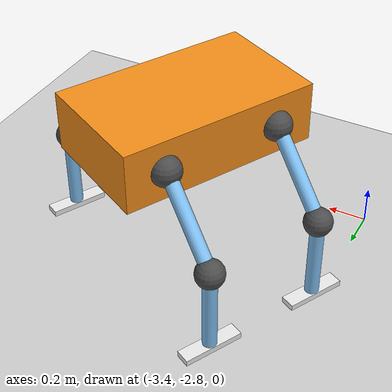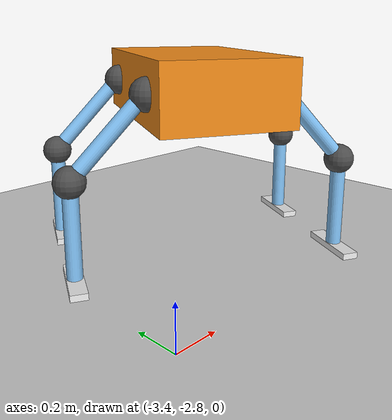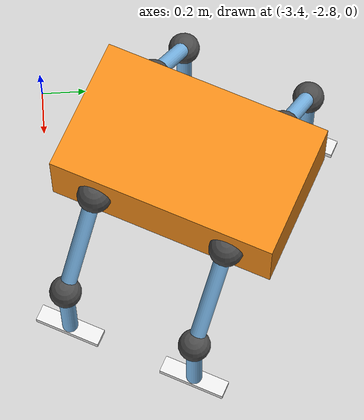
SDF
<sdf version="1.6">
 <world name="default">
  <model name="ground_plane">
   <static>1</static>
   <link name="link">
    <collision name="collision">
     <geometry><plane><normal>0 0 1</normal><size>100 100</size></plane></geometry>
     <surface>
      <contact><collide_bitmask>65535</collide_bitmask></contact>
      <friction><ode><mu>100</mu><mu2>50</mu2></ode></friction>
     </surface>
    </collision>
    <visual name="visual">
     <cast_shadows>0</cast_shadows>
     <geometry><plane><normal>0 0 1</normal><size>100 100</size></plane></geometry>
     <material>
      <script><uri>file://media/materials/scripts/gazebo.material</uri><name>Gazebo/Grey</name></script>
     </material>
    </visual>
   </link>
  </model>
  <model name="leg_joints">
   <link name="link_0">
    <pose>0 0 1.18344 0 -0 0</pose>
    <inertial>
     <mass>1</mass>
     <inertia>
      <ixx>0.166667</ixx>
      <ixy>0</ixy>
      <ixz>0</ixz>
      <iyy>0.166667</iyy>
      <iyz>0</iyz>
      <izz>0.166667</izz>
     </inertia>
    </inertial>
    <visual name="visual">
     <geometry><box><size>1 0.6 0.3</size></box></geometry>
     <material>
      <lighting>1</lighting>
      <script><uri>file://media/materials/scripts/gazebo.material</uri><name>Gazebo/Orange</name></script>
      <shader type="pixel"><normal_map>__default__</normal_map></shader>
      <ambient>1 0.5088 0.0468 1</ambient>
      <diffuse>1 0.5088 0.0468 1</diffuse>
      <specular>0.5 0.5 0.5 1</specular>
      <emissive>0 0 0 1</emissive>
     </material>
    </visual>
    <collision name="collision">
     <geometry><box><size>1 0.6 0.3</size></box></geometry>
     <surface>
      <friction>
       <ode><mu>1</mu><mu2>1</mu2><fdir1>0 0 0</fdir1><slip1>0</slip1><slip2>0</slip2></ode>
       <torsional>
        <coefficient>1</coefficient>
        <patch_radius>0</patch_radius>
        <surface_radius>0</surface_radius>
        <use_patch_radius>1</use_patch_radius>
        <ode><slip>0</slip></ode>
       </torsional>
      </friction>
      <bounce><restitution_coefficient>0</restitution_coefficient><threshold>1e+06</threshold></bounce>
      <contact>
       <collide_without_contact>0</collide_without_contact>
       <collide_without_contact_bitmask>1</collide_without_contact_bitmask>
       <collide_bitmask>1</collide_bitmask>
       <ode>
        <soft_cfm>0</soft_cfm>
        <soft_erp>0.2</soft_erp>
        <kp>1e+13</kp>
        <kd>1</kd>
        <max_vel>0.01</max_vel>
        <min_depth>0</min_depth>
       </ode>
       <bullet>
        <split_impulse>1</split_impulse>
        <split_impulse_penetration_threshold>-0.01</split_impulse_penetration_threshold>
        <soft_cfm>0</soft_cfm>
        <soft_erp>0.2</soft_erp>
        <kp>1e+13</kp>
        <kd>1</kd>
       </bullet>
      </contact>
     </surface>
    </collision>
   </link>
   <link name="link_1">
    <pose>-0.3 -0.3 1.18344 0 -0 0</pose>
    <inertial>
     <mass>1</mass>
     <inertia><ixx>0.1</ixx><ixy>0</ixy><ixz>0</ixz><iyy>0.1</iyy><iyz>0</iyz><izz>0.1</izz></inertia>
    </inertial>
    <visual name="visual">
     <geometry><sphere><radius>0.075</radius></sphere></geometry>
     <material>
      <lighting>1</lighting>
      <script><uri>file://media/materials/scripts/gazebo.material</uri><name>Gazebo/DarkGrey</name></script>
      <shader type="pixel"><normal_map>__default__</normal_map></shader>
      <ambient>0.175 0.175 0.175 1</ambient>
      <diffuse>0.175 0.175 0.175 1</diffuse>
      <specular>0.175 0.175 0.175 1</specular>
      <emissive>0 0 0 1</emissive>
     </material>
    </visual>
    <collision name="collision">
     <geometry><sphere><radius>0.075</radius></sphere></geometry>
     <surface>
      <friction>
       <ode><mu>1</mu><mu2>1</mu2><fdir1>0 0 0</fdir1><slip1>0</slip1><slip2>0</slip2></ode>
       <torsional>
        <coefficient>1</coefficient>
        <patch_radius>0</patch_radius>
        <surface_radius>0</surface_radius>
        <use_patch_radius>1</use_patch_radius>
        <ode><slip>0</slip></ode>
       </torsional>
      </friction>
      <bounce><restitution_coefficient>0</restitution_coefficient><threshold>1e+06</threshold></bounce>
      <contact>
       <collide_without_contact>0</collide_without_contact>
       <collide_without_contact_bitmask>1</collide_without_contact_bitmask>
       <collide_bitmask>1</collide_bitmask>
       <ode>
        <soft_cfm>0</soft_cfm>
        <soft_erp>0.2</soft_erp>
        <kp>1e+13</kp>
        <kd>1</kd>
        <max_vel>0.01</max_vel>
        <min_depth>0</min_depth>
       </ode>
       <bullet>
        <split_impulse>1</split_impulse>
        <split_impulse_penetration_threshold>-0.01</split_impulse_penetration_threshold>
        <soft_cfm>0</soft_cfm>
        <soft_erp>0.2</soft_erp>
        <kp>1e+13</kp>
        <kd>1</kd>
       </bullet>
      </contact>
     </surface>
    </collision>
   </link>
   <link name="link_1_clone">
    <pose>0.3 -0.3 1.18344 0 -0 0</pose>
    <inertial>
     <mass>1</mass>
     <inertia><ixx>0.1</ixx><ixy>0</ixy><ixz>0</ixz><iyy>0.1</iyy><iyz>0</iyz><izz>0.1</izz></inertia>
    </inertial>
    <visual name="visual">
     <geometry><sphere><radius>0.075</radius></sphere></geometry>
     <material>
      <lighting>1</lighting>
      <script><uri>file://media/materials/scripts/gazebo.material</uri><name>Gazebo/DarkGrey</name></script>
      <shader type="pixel"><normal_map>__default__</normal_map></shader>
      <ambient>0.175 0.175 0.175 1</ambient>
      <diffuse>0.175 0.175 0.175 1</diffuse>
      <specular>0.175 0.175 0.175 1</specular>
      <emissive>0 0 0 1</emissive>
     </material>
    </visual>
    <collision name="collision">
     <geometry><sphere><radius>0.075</radius></sphere></geometry>
     <surface>
      <friction>
       <ode><mu>1</mu><mu2>1</mu2><fdir1>0 0 0</fdir1><slip1>0</slip1><slip2>0</slip2></ode>
       <torsional>
        <coefficient>1</coefficient>
        <patch_radius>0</patch_radius>
        <surface_radius>0</surface_radius>
        <use_patch_radius>1</use_patch_radius>
        <ode><slip>0</slip></ode>
       </torsional>
      </friction>
      <bounce><restitution_coefficient>0</restitution_coefficient><threshold>1e+06</threshold></bounce>
      <contact>
       <collide_without_contact>0</collide_without_contact>
       <collide_without_contact_bitmask>1</collide_without_contact_bitmask>
       <collide_bitmask>1</collide_bitmask>
       <ode>
        <soft_cfm>0</soft_cfm>
        <soft_erp>0.2</soft_erp>
        <kp>1e+13</kp>
        <kd>1</kd>
        <max_vel>0.01</max_vel>
        <min_depth>0</min_depth>
       </ode>
       <bullet>
        <split_impulse>1</split_impulse>
        <split_impulse_penetration_threshold>-0.01</split_impulse_penetration_threshold>
        <soft_cfm>0</soft_cfm>
        <soft_erp>0.2</soft_erp>
        <kp>1e+13</kp>
        <kd>1</kd>
       </bullet>
      </contact>
     </surface>
    </collision>
   </link>
   <link name="link_1_clone_0">
    <pose>0.3 0.3 1.18344 0 -0 0</pose>
    <inertial>
     <mass>1</mass>
     <inertia><ixx>0.1</ixx><ixy>0</ixy><ixz>0</ixz><iyy>0.1</iyy><iyz>0</iyz><izz>0.1</izz></inertia>
    </inertial>
    <visual name="visual">
     <geometry><sphere><radius>0.075</radius></sphere></geometry>
     <material>
      <lighting>1</lighting>
      <script><uri>file://media/materials/scripts/gazebo.material</uri><name>Gazebo/DarkGrey</name></script>
      <shader type="pixel"><normal_map>__default__</normal_map></shader>
      <ambient>0.175 0.175 0.175 1</ambient>
      <diffuse>0.175 0.175 0.175 1</diffuse>
      <specular>0.175 0.175 0.175 1</specular>
      <emissive>0 0 0 1</emissive>
     </material>
    </visual>
    <collision name="collision">
     <geometry><sphere><radius>0.075</radius></sphere></geometry>
     <surface>
      <friction>
       <ode><mu>1</mu><mu2>1</mu2><fdir1>0 0 0</fdir1><slip1>0</slip1><slip2>0</slip2></ode>
       <torsional>
        <coefficient>1</coefficient>
        <patch_radius>0</patch_radius>
        <surface_radius>0</surface_radius>
        <use_patch_radius>1</use_patch_radius>
        <ode><slip>0</slip></ode>
       </torsional>
      </friction>
      <bounce><restitution_coefficient>0</restitution_coefficient><threshold>1e+06</threshold></bounce>
      <contact>
       <collide_without_contact>0</collide_without_contact>
       <collide_without_contact_bitmask>1</collide_without_contact_bitmask>
       <collide_bitmask>1</collide_bitmask>
       <ode>
        <soft_cfm>0</soft_cfm>
        <soft_erp>0.2</soft_erp>
        <kp>1e+13</kp>
        <kd>1</kd>
        <max_vel>0.01</max_vel>
        <min_depth>0</min_depth>
       </ode>
       <bullet>
        <split_impulse>1</split_impulse>
        <split_impulse_penetration_threshold>-0.01</split_impulse_penetration_threshold>
        <soft_cfm>0</soft_cfm>
        <soft_erp>0.2</soft_erp>
        <kp>1e+13</kp>
        <kd>1</kd>
       </bullet>
      </contact>
     </surface>
    </collision>
   </link>
   <link name="link_1_clone_1">
    <pose>-0.3 0.3 1.18344 0 -0 0</pose>
    <inertial>
     <mass>1</mass>
     <inertia><ixx>0.1</ixx><ixy>0</ixy><ixz>0</ixz><iyy>0.1</iyy><iyz>0</iyz><izz>0.1</izz></inertia>
    </inertial>
    <visual name="visual">
     <geometry><sphere><radius>0.075</radius></sphere></geometry>
     <material>
      <lighting>1</lighting>
      <script><uri>file://media/materials/scripts/gazebo.material</uri><name>Gazebo/DarkGrey</name></script>
      <shader type="pixel"><normal_map>__default__</normal_map></shader>
      <ambient>0.175 0.175 0.175 1</ambient>
      <diffuse>0.175 0.175 0.175 1</diffuse>
      <specular>0.175 0.175 0.175 1</specular>
      <emissive>0 0 0 1</emissive>
     </material>
    </visual>
    <collision name="collision">
     <geometry><sphere><radius>0.075</radius></sphere></geometry>
     <surface>
      <friction>
       <ode><mu>1</mu><mu2>1</mu2><fdir1>0 0 0</fdir1><slip1>0</slip1><slip2>0</slip2></ode>
       <torsional>
        <coefficient>1</coefficient>
        <patch_radius>0</patch_radius>
        <surface_radius>0</surface_radius>
        <use_patch_radius>1</use_patch_radius>
        <ode><slip>0</slip></ode>
       </torsional>
      </friction>
      <bounce><restitution_coefficient>0</restitution_coefficient><threshold>1e+06</threshold></bounce>
      <contact>
       <collide_without_contact>0</collide_without_contact>
       <collide_without_contact_bitmask>1</collide_without_contact_bitmask>
       <collide_bitmask>1</collide_bitmask>
       <ode>
        <soft_cfm>0</soft_cfm>
        <soft_erp>0.2</soft_erp>
        <kp>1e+13</kp>
        <kd>1</kd>
        <max_vel>0.01</max_vel>
        <min_depth>0</min_depth>
       </ode>
       <bullet>
        <split_impulse>1</split_impulse>
        <split_impulse_penetration_threshold>-0.01</split_impulse_penetration_threshold>
        <soft_cfm>0</soft_cfm>
        <soft_erp>0.2</soft_erp>
        <kp>1e+13</kp>
        <kd>1</kd>
       </bullet>
      </contact>
     </surface>
    </collision>
   </link>
   <link name="link_2">
    <pose>-0.3 -0.47 1.01344 -0.75 -0 0</pose>
    <inertial>
     <mass>1</mass>
     <inertia><ixx>0.145833</ixx><ixy>0</ixy><ixz>0</ixz><iyy>0.145833</iyy><iyz>0</iyz><izz>0.125</izz></inertia>
    </inertial>
    <visual name="visual">
     <geometry><cylinder><radius>0.035</radius><length>0.4</length></cylinder></geometry>
     <material>
      <lighting>1</lighting>
      <script><uri>file://media/materials/scripts/gazebo.material</uri><name>Gazebo/SkyBlue</name></script>
      <shader type="pixel"><normal_map>__default__</normal_map></shader>
      <ambient>0.13 0.44 0.7 1</ambient>
      <diffuse>0 0 1 1</diffuse>
      <specular>0.1 0.1 0.1 1</specular>
      <emissive>0 0 0 1</emissive>
     </material>
    </visual>
    <collision name="collision">
     <geometry><cylinder><radius>0.035</radius><length>0.4</length></cylinder></geometry>
     <surface>
      <friction>
       <ode><mu>1</mu><mu2>1</mu2><fdir1>0 0 0</fdir1><slip1>0</slip1><slip2>0</slip2></ode>
       <torsional>
        <coefficient>1</coefficient>
        <patch_radius>0</patch_radius>
        <surface_radius>0</surface_radius>
        <use_patch_radius>1</use_patch_radius>
        <ode><slip>0</slip></ode>
       </torsional>
      </friction>
      <bounce><restitution_coefficient>0</restitution_coefficient><threshold>1e+06</threshold></bounce>
      <contact>
       <collide_without_contact>0</collide_without_contact>
       <collide_without_contact_bitmask>1</collide_without_contact_bitmask>
       <collide_bitmask>1</collide_bitmask>
       <ode>
        <soft_cfm>0</soft_cfm>
        <soft_erp>0.2</soft_erp>
        <kp>1e+13</kp>
        <kd>1</kd>
        <max_vel>0.01</max_vel>
        <min_depth>0</min_depth>
       </ode>
       <bullet>
        <split_impulse>1</split_impulse>
        <split_impulse_penetration_threshold>-0.01</split_impulse_penetration_threshold>
        <soft_cfm>0</soft_cfm>
        <soft_erp>0.2</soft_erp>
        <kp>1e+13</kp>
        <kd>1</kd>
       </bullet>
      </contact>
     </surface>
    </collision>
   </link>
   <link name="link_2_clone">
    <pose>0.3 -0.47 1.01344 -0.75 -0 0</pose>
    <inertial>
     <mass>1</mass>
     <inertia><ixx>0.145833</ixx><ixy>0</ixy><ixz>0</ixz><iyy>0.145833</iyy><iyz>0</iyz><izz>0.125</izz></inertia>
    </inertial>
    <visual name="visual">
     <geometry><cylinder><radius>0.035</radius><length>0.4</length></cylinder></geometry>
     <material>
      <lighting>1</lighting>
      <script><uri>file://media/materials/scripts/gazebo.material</uri><name>Gazebo/SkyBlue</name></script>
      <shader type="pixel"><normal_map>__default__</normal_map></shader>
      <ambient>0.13 0.44 0.7 1</ambient>
      <diffuse>0 0 1 1</diffuse>
      <specular>0.1 0.1 0.1 1</specular>
      <emissive>0 0 0 1</emissive>
     </material>
    </visual>
    <collision name="collision">
     <geometry><cylinder><radius>0.035</radius><length>0.4</length></cylinder></geometry>
     <surface>
      <friction>
       <ode><mu>1</mu><mu2>1</mu2><fdir1>0 0 0</fdir1><slip1>0</slip1><slip2>0</slip2></ode>
       <torsional>
        <coefficient>1</coefficient>
        <patch_radius>0</patch_radius>
        <surface_radius>0</surface_radius>
        <use_patch_radius>1</use_patch_radius>
        <ode><slip>0</slip></ode>
       </torsional>
      </friction>
      <bounce><restitution_coefficient>0</restitution_coefficient><threshold>1e+06</threshold></bounce>
      <contact>
       <collide_without_contact>0</collide_without_contact>
       <collide_without_contact_bitmask>1</collide_without_contact_bitmask>
       <collide_bitmask>1</collide_bitmask>
       <ode>
        <soft_cfm>0</soft_cfm>
        <soft_erp>0.2</soft_erp>
        <kp>1e+13</kp>
        <kd>1</kd>
        <max_vel>0.01</max_vel>
        <min_depth>0</min_depth>
       </ode>
       <bullet>
        <split_impulse>1</split_impulse>
        <split_impulse_penetration_threshold>-0.01</split_impulse_penetration_threshold>
        <soft_cfm>0</soft_cfm>
        <soft_erp>0.2</soft_erp>
        <kp>1e+13</kp>
        <kd>1</kd>
       </bullet>
      </contact>
     </surface>
    </collision>
   </link>
   <link name="link_2_clone_0">
    <pose>-0.3 0.47 1.01344 0.75 -0 0</pose>
    <inertial>
     <mass>1</mass>
     <inertia><ixx>0.145833</ixx><ixy>0</ixy><ixz>0</ixz><iyy>0.145833</iyy><iyz>0</iyz><izz>0.125</izz></inertia>
    </inertial>
    <visual name="visual">
     <geometry><cylinder><radius>0.035</radius><length>0.4</length></cylinder></geometry>
     <material>
      <lighting>1</lighting>
      <script><uri>file://media/materials/scripts/gazebo.material</uri><name>Gazebo/SkyBlue</name></script>
      <shader type="pixel"><normal_map>__default__</normal_map></shader>
      <ambient>0.13 0.44 0.7 1</ambient>
      <diffuse>0 0 1 1</diffuse>
      <specular>0.1 0.1 0.1 1</specular>
      <emissive>0 0 0 1</emissive>
     </material>
    </visual>
    <collision name="collision">
     <geometry><cylinder><radius>0.035</radius><length>0.4</length></cylinder></geometry>
     <surface>
      <friction>
       <ode><mu>1</mu><mu2>1</mu2><fdir1>0 0 0</fdir1><slip1>0</slip1><slip2>0</slip2></ode>
       <torsional>
        <coefficient>1</coefficient>
        <patch_radius>0</patch_radius>
        <surface_radius>0</surface_radius>
        <use_patch_radius>1</use_patch_radius>
        <ode><slip>0</slip></ode>
       </torsional>
      </friction>
      <bounce><restitution_coefficient>0</restitution_coefficient><threshold>1e+06</threshold></bounce>
      <contact>
       <collide_without_contact>0</collide_without_contact>
       <collide_without_contact_bitmask>1</collide_without_contact_bitmask>
       <collide_bitmask>1</collide_bitmask>
       <ode>
        <soft_cfm>0</soft_cfm>
        <soft_erp>0.2</soft_erp>
        <kp>1e+13</kp>
        <kd>1</kd>
        <max_vel>0.01</max_vel>
        <min_depth>0</min_depth>
       </ode>
       <bullet>
        <split_impulse>1</split_impulse>
        <split_impulse_penetration_threshold>-0.01</split_impulse_penetration_threshold>
        <soft_cfm>0</soft_cfm>
        <soft_erp>0.2</soft_erp>
        <kp>1e+13</kp>
        <kd>1</kd>
       </bullet>
      </contact>
     </surface>
    </collision>
   </link>
   <link name="link_2_clone_1">
    <pose>0.3 0.47 1.01344 0.75 -0 0</pose>
    <inertial>
     <mass>1</mass>
     <inertia><ixx>0.145833</ixx><ixy>0</ixy><ixz>0</ixz><iyy>0.145833</iyy><iyz>0</iyz><izz>0.125</izz></inertia>
    </inertial>
    <visual name="visual">
     <geometry><cylinder><radius>0.035</radius><length>0.4</length></cylinder></geometry>
     <material>
      <lighting>1</lighting>
      <script><uri>file://media/materials/scripts/gazebo.material</uri><name>Gazebo/SkyBlue</name></script>
      <shader type="pixel"><normal_map>__default__</normal_map></shader>
      <ambient>0.13 0.44 0.7 1</ambient>
      <diffuse>0 0 1 1</diffuse>
      <specular>0.1 0.1 0.1 1</specular>
      <emissive>0 0 0 1</emissive>
     </material>
    </visual>
    <collision name="collision">
     <geometry><cylinder><radius>0.035</radius><length>0.4</length></cylinder></geometry>
     <surface>
      <friction>
       <ode><mu>1</mu><mu2>1</mu2><fdir1>0 0 0</fdir1><slip1>0</slip1><slip2>0</slip2></ode>
       <torsional>
        <coefficient>1</coefficient>
        <patch_radius>0</patch_radius>
        <surface_radius>0</surface_radius>
        <use_patch_radius>1</use_patch_radius>
        <ode><slip>0</slip></ode>
       </torsional>
      </friction>
      <bounce><restitution_coefficient>0</restitution_coefficient><threshold>1e+06</threshold></bounce>
      <contact>
       <collide_without_contact>0</collide_without_contact>
       <collide_without_contact_bitmask>1</collide_without_contact_bitmask>
       <collide_bitmask>1</collide_bitmask>
       <ode>
        <soft_cfm>0</soft_cfm>
        <soft_erp>0.2</soft_erp>
        <kp>1e+13</kp>
        <kd>1</kd>
        <max_vel>0.01</max_vel>
        <min_depth>0</min_depth>
       </ode>
       <bullet>
        <split_impulse>1</split_impulse>
        <split_impulse_penetration_threshold>-0.01</split_impulse_penetration_threshold>
        <soft_cfm>0</soft_cfm>
        <soft_erp>0.2</soft_erp>
        <kp>1e+13</kp>
        <kd>1</kd>
       </bullet>
      </contact>
     </surface>
    </collision>
   </link>
   <link name="link_3">
    <pose>-0.3 -0.63 0.837888 0 -0 0</pose>
    <inertial>
     <mass>1</mass>
     <inertia><ixx>0.1</ixx><ixy>0</ixy><ixz>0</ixz><iyy>0.1</iyy><iyz>0</iyz><izz>0.1</izz></inertia>
    </inertial>
    <visual name="visual">
     <geometry><sphere><radius>0.07</radius></sphere></geometry>
     <material>
      <lighting>1</lighting>
      <script><uri>file://media/materials/scripts/gazebo.material</uri><name>Gazebo/DarkGrey</name></script>
      <shader type="pixel"><normal_map>__default__</normal_map></shader>
      <ambient>0.175 0.175 0.175 1</ambient>
      <diffuse>0.175 0.175 0.175 1</diffuse>
      <specular>0.175 0.175 0.175 1</specular>
      <emissive>0 0 0 1</emissive>
     </material>
    </visual>
    <collision name="collision">
     <geometry><sphere><radius>0.07</radius></sphere></geometry>
     <surface>
      <friction>
       <ode><mu>1</mu><mu2>1</mu2><fdir1>0 0 0</fdir1><slip1>0</slip1><slip2>0</slip2></ode>
       <torsional>
        <coefficient>1</coefficient>
        <patch_radius>0</patch_radius>
        <surface_radius>0</surface_radius>
        <use_patch_radius>1</use_patch_radius>
        <ode><slip>0</slip></ode>
       </torsional>
      </friction>
      <bounce><restitution_coefficient>0</restitution_coefficient><threshold>1e+06</threshold></bounce>
      <contact>
       <collide_without_contact>0</collide_without_contact>
       <collide_without_contact_bitmask>1</collide_without_contact_bitmask>
       <collide_bitmask>1</collide_bitmask>
       <ode>
        <soft_cfm>0</soft_cfm>
        <soft_erp>0.2</soft_erp>
        <kp>1e+13</kp>
        <kd>1</kd>
        <max_vel>0.01</max_vel>
        <min_depth>0</min_depth>
       </ode>
       <bullet>
        <split_impulse>1</split_impulse>
        <split_impulse_penetration_threshold>-0.01</split_impulse_penetration_threshold>
        <soft_cfm>0</soft_cfm>
        <soft_erp>0.2</soft_erp>
        <kp>1e+13</kp>
        <kd>1</kd>
       </bullet>
      </contact>
     </surface>
    </collision>
   </link>
   <link name="link_3_clone">
    <pose>0.3 -0.63 0.837888 0 -0 0</pose>
    <inertial>
     <mass>1</mass>
     <inertia><ixx>0.1</ixx><ixy>0</ixy><ixz>0</ixz><iyy>0.1</iyy><iyz>0</iyz><izz>0.1</izz></inertia>
    </inertial>
    <visual name="visual">
     <geometry><sphere><radius>0.07</radius></sphere></geometry>
     <material>
      <lighting>1</lighting>
      <script><uri>file://media/materials/scripts/gazebo.material</uri><name>Gazebo/DarkGrey</name></script>
      <shader type="pixel"><normal_map>__default__</normal_map></shader>
      <ambient>0.175 0.175 0.175 1</ambient>
      <diffuse>0.175 0.175 0.175 1</diffuse>
      <specular>0.175 0.175 0.175 1</specular>
      <emissive>0 0 0 1</emissive>
     </material>
    </visual>
    <collision name="collision">
     <geometry><sphere><radius>0.07</radius></sphere></geometry>
     <surface>
      <friction>
       <ode><mu>1</mu><mu2>1</mu2><fdir1>0 0 0</fdir1><slip1>0</slip1><slip2>0</slip2></ode>
       <torsional>
        <coefficient>1</coefficient>
        <patch_radius>0</patch_radius>
        <surface_radius>0</surface_radius>
        <use_patch_radius>1</use_patch_radius>
        <ode><slip>0</slip></ode>
       </torsional>
      </friction>
      <bounce><restitution_coefficient>0</restitution_coefficient><threshold>1e+06</threshold></bounce>
      <contact>
       <collide_without_contact>0</collide_without_contact>
       <collide_without_contact_bitmask>1</collide_without_contact_bitmask>
       <collide_bitmask>1</collide_bitmask>
       <ode>
        <soft_cfm>0</soft_cfm>
        <soft_erp>0.2</soft_erp>
        <kp>1e+13</kp>
        <kd>1</kd>
        <max_vel>0.01</max_vel>
        <min_depth>0</min_depth>
       </ode>
       <bullet>
        <split_impulse>1</split_impulse>
        <split_impulse_penetration_threshold>-0.01</split_impulse_penetration_threshold>
        <soft_cfm>0</soft_cfm>
        <soft_erp>0.2</soft_erp>
        <kp>1e+13</kp>
        <kd>1</kd>
       </bullet>
      </contact>
     </surface>
    </collision>
   </link>
   <link name="link_3_clone_0">
    <pose>-0.3 0.63 0.837888 0 -0 0</pose>
    <inertial>
     <mass>1</mass>
     <inertia><ixx>0.1</ixx><ixy>0</ixy><ixz>0</ixz><iyy>0.1</iyy><iyz>0</iyz><izz>0.1</izz></inertia>
    </inertial>
    <visual name="visual">
     <geometry><sphere><radius>0.07</radius></sphere></geometry>
     <material>
      <lighting>1</lighting>
      <script><uri>file://media/materials/scripts/gazebo.material</uri><name>Gazebo/DarkGrey</name></script>
      <shader type="pixel"><normal_map>__default__</normal_map></shader>
      <ambient>0.175 0.175 0.175 1</ambient>
      <diffuse>0.175 0.175 0.175 1</diffuse>
      <specular>0.175 0.175 0.175 1</specular>
      <emissive>0 0 0 1</emissive>
     </material>
    </visual>
    <collision name="collision">
     <geometry><sphere><radius>0.07</radius></sphere></geometry>
     <surface>
      <friction>
       <ode><mu>1</mu><mu2>1</mu2><fdir1>0 0 0</fdir1><slip1>0</slip1><slip2>0</slip2></ode>
       <torsional>
        <coefficient>1</coefficient>
        <patch_radius>0</patch_radius>
        <surface_radius>0</surface_radius>
        <use_patch_radius>1</use_patch_radius>
        <ode><slip>0</slip></ode>
       </torsional>
      </friction>
      <bounce><restitution_coefficient>0</restitution_coefficient><threshold>1e+06</threshold></bounce>
      <contact>
       <collide_without_contact>0</collide_without_contact>
       <collide_without_contact_bitmask>1</collide_without_contact_bitmask>
       <collide_bitmask>1</collide_bitmask>
       <ode>
        <soft_cfm>0</soft_cfm>
        <soft_erp>0.2</soft_erp>
        <kp>1e+13</kp>
        <kd>1</kd>
        <max_vel>0.01</max_vel>
        <min_depth>0</min_depth>
       </ode>
       <bullet>
        <split_impulse>1</split_impulse>
        <split_impulse_penetration_threshold>-0.01</split_impulse_penetration_threshold>
        <soft_cfm>0</soft_cfm>
        <soft_erp>0.2</soft_erp>
        <kp>1e+13</kp>
        <kd>1</kd>
       </bullet>
      </contact>
     </surface>
    </collision>
   </link>
   <link name="link_3_clone_1">
    <pose>0.3 0.63 0.837888 0 -0 0</pose>
    <inertial>
     <mass>1</mass>
     <inertia><ixx>0.1</ixx><ixy>0</ixy><ixz>0</ixz><iyy>0.1</iyy><iyz>0</iyz><izz>0.1</izz></inertia>
    </inertial>
    <visual name="visual">
     <geometry><sphere><radius>0.07</radius></sphere></geometry>
     <material>
      <lighting>1</lighting>
      <script><uri>file://media/materials/scripts/gazebo.material</uri><name>Gazebo/DarkGrey</name></script>
      <shader type="pixel"><normal_map>__default__</normal_map></shader>
      <ambient>0.175 0.175 0.175 1</ambient>
      <diffuse>0.175 0.175 0.175 1</diffuse>
      <specular>0.175 0.175 0.175 1</specular>
      <emissive>0 0 0 1</emissive>
     </material>
    </visual>
    <collision name="collision">
     <geometry><sphere><radius>0.07</radius></sphere></geometry>
     <surface>
      <friction>
       <ode><mu>1</mu><mu2>1</mu2><fdir1>0 0 0</fdir1><slip1>0</slip1><slip2>0</slip2></ode>
       <torsional>
        <coefficient>1</coefficient>
        <patch_radius>0</patch_radius>
        <surface_radius>0</surface_radius>
        <use_patch_radius>1</use_patch_radius>
        <ode><slip>0</slip></ode>
       </torsional>
      </friction>
      <bounce><restitution_coefficient>0</restitution_coefficient><threshold>1e+06</threshold></bounce>
      <contact>
       <collide_without_contact>0</collide_without_contact>
       <collide_without_contact_bitmask>1</collide_without_contact_bitmask>
       <collide_bitmask>1</collide_bitmask>
       <ode>
        <soft_cfm>0</soft_cfm>
        <soft_erp>0.2</soft_erp>
        <kp>1e+13</kp>
        <kd>1</kd>
        <max_vel>0.01</max_vel>
        <min_depth>0</min_depth>
       </ode>
       <bullet>
        <split_impulse>1</split_impulse>
        <split_impulse_penetration_threshold>-0.01</split_impulse_penetration_threshold>
        <soft_cfm>0</soft_cfm>
        <soft_erp>0.2</soft_erp>
        <kp>1e+13</kp>
        <kd>1</kd>
       </bullet>
      </contact>
     </surface>
    </collision>
   </link>
   <link name="link_4">
    <pose>-0.3 -0.63 0.600367 0 -0 0</pose>
    <inertial>
     <mass>1</mass>
     <inertia><ixx>0.145833</ixx><ixy>0</ixy><ixz>0</ixz><iyy>0.145833</iyy><iyz>0</iyz><izz>0.125</izz></inertia>
    </inertial>
    <visual name="visual">
     <geometry><cylinder><radius>0.035</radius><length>0.4</length></cylinder></geometry>
     <material>
      <lighting>1</lighting>
      <script><uri>file://media/materials/scripts/gazebo.material</uri><name>Gazebo/SkyBlue</name></script>
      <shader type="pixel"><normal_map>__default__</normal_map></shader>
      <ambient>0.13 0.44 0.7 1</ambient>
      <diffuse>0 0 1 1</diffuse>
      <specular>0.1 0.1 0.1 1</specular>
      <emissive>0 0 0 1</emissive>
     </material>
    </visual>
    <collision name="collision">
     <geometry><cylinder><radius>0.035</radius><length>0.4</length></cylinder></geometry>
     <surface>
      <friction>
       <ode><mu>1</mu><mu2>1</mu2><fdir1>0 0 0</fdir1><slip1>0</slip1><slip2>0</slip2></ode>
       <torsional>
        <coefficient>1</coefficient>
        <patch_radius>0</patch_radius>
        <surface_radius>0</surface_radius>
        <use_patch_radius>1</use_patch_radius>
        <ode><slip>0</slip></ode>
       </torsional>
      </friction>
      <bounce><restitution_coefficient>0</restitution_coefficient><threshold>1e+06</threshold></bounce>
      <contact>
       <collide_without_contact>0</collide_without_contact>
       <collide_without_contact_bitmask>1</collide_without_contact_bitmask>
       <collide_bitmask>1</collide_bitmask>
       <ode>
        <soft_cfm>0</soft_cfm>
        <soft_erp>0.2</soft_erp>
        <kp>1e+13</kp>
        <kd>1</kd>
        <max_vel>0.01</max_vel>
        <min_depth>0</min_depth>
       </ode>
       <bullet>
        <split_impulse>1</split_impulse>
        <split_impulse_penetration_threshold>-0.01</split_impulse_penetration_threshold>
        <soft_cfm>0</soft_cfm>
        <soft_erp>0.2</soft_erp>
        <kp>1e+13</kp>
        <kd>1</kd>
       </bullet>
      </contact>
     </surface>
    </collision>
   </link>
   <link name="link_4_clone">
    <pose>0.3 -0.63 0.600367 0 -0 0</pose>
    <inertial>
     <mass>1</mass>
     <inertia><ixx>0.145833</ixx><ixy>0</ixy><ixz>0</ixz><iyy>0.145833</iyy><iyz>0</iyz><izz>0.125</izz></inertia>
    </inertial>
    <visual name="visual">
     <geometry><cylinder><radius>0.035</radius><length>0.4</length></cylinder></geometry>
     <material>
      <lighting>1</lighting>
      <script><uri>file://media/materials/scripts/gazebo.material</uri><name>Gazebo/SkyBlue</name></script>
      <shader type="pixel"><normal_map>__default__</normal_map></shader>
      <ambient>0.13 0.44 0.7 1</ambient>
      <diffuse>0 0 1 1</diffuse>
      <specular>0.1 0.1 0.1 1</specular>
      <emissive>0 0 0 1</emissive>
     </material>
    </visual>
    <collision name="collision">
     <geometry><cylinder><radius>0.035</radius><length>0.4</length></cylinder></geometry>
     <surface>
      <friction>
       <ode><mu>1</mu><mu2>1</mu2><fdir1>0 0 0</fdir1><slip1>0</slip1><slip2>0</slip2></ode>
       <torsional>
        <coefficient>1</coefficient>
        <patch_radius>0</patch_radius>
        <surface_radius>0</surface_radius>
        <use_patch_radius>1</use_patch_radius>
        <ode><slip>0</slip></ode>
       </torsional>
      </friction>
      <bounce><restitution_coefficient>0</restitution_coefficient><threshold>1e+06</threshold></bounce>
      <contact>
       <collide_without_contact>0</collide_without_contact>
       <collide_without_contact_bitmask>1</collide_without_contact_bitmask>
       <collide_bitmask>1</collide_bitmask>
       <ode>
        <soft_cfm>0</soft_cfm>
        <soft_erp>0.2</soft_erp>
        <kp>1e+13</kp>
        <kd>1</kd>
        <max_vel>0.01</max_vel>
        <min_depth>0</min_depth>
       </ode>
       <bullet>
        <split_impulse>1</split_impulse>
        <split_impulse_penetration_threshold>-0.01</split_impulse_penetration_threshold>
        <soft_cfm>0</soft_cfm>
        <soft_erp>0.2</soft_erp>
        <kp>1e+13</kp>
        <kd>1</kd>
       </bullet>
      </contact>
     </surface>
    </collision>
   </link>
   <link name="link_4_clone_0">
    <pose>-0.3 0.63 0.600367 0 -0 0</pose>
    <inertial>
     <mass>1</mass>
     <inertia><ixx>0.145833</ixx><ixy>0</ixy><ixz>0</ixz><iyy>0.145833</iyy><iyz>0</iyz><izz>0.125</izz></inertia>
    </inertial>
    <visual name="visual">
     <geometry><cylinder><radius>0.035</radius><length>0.4</length></cylinder></geometry>
     <material>
      <lighting>1</lighting>
      <script><uri>file://media/materials/scripts/gazebo.material</uri><name>Gazebo/SkyBlue</name></script>
      <shader type="pixel"><normal_map>__default__</normal_map></shader>
      <ambient>0.13 0.44 0.7 1</ambient>
      <diffuse>0 0 1 1</diffuse>
      <specular>0.1 0.1 0.1 1</specular>
      <emissive>0 0 0 1</emissive>
     </material>
    </visual>
    <collision name="collision">
     <geometry><cylinder><radius>0.035</radius><length>0.4</length></cylinder></geometry>
     <surface>
      <friction>
       <ode><mu>1</mu><mu2>1</mu2><fdir1>0 0 0</fdir1><slip1>0</slip1><slip2>0</slip2></ode>
       <torsional>
        <coefficient>1</coefficient>
        <patch_radius>0</patch_radius>
        <surface_radius>0</surface_radius>
        <use_patch_radius>1</use_patch_radius>
        <ode><slip>0</slip></ode>
       </torsional>
      </friction>
      <bounce><restitution_coefficient>0</restitution_coefficient><threshold>1e+06</threshold></bounce>
      <contact>
       <collide_without_contact>0</collide_without_contact>
       <collide_without_contact_bitmask>1</collide_without_contact_bitmask>
       <collide_bitmask>1</collide_bitmask>
       <ode>
        <soft_cfm>0</soft_cfm>
        <soft_erp>0.2</soft_erp>
        <kp>1e+13</kp>
        <kd>1</kd>
        <max_vel>0.01</max_vel>
        <min_depth>0</min_depth>
       </ode>
       <bullet>
        <split_impulse>1</split_impulse>
        <split_impulse_penetration_threshold>-0.01</split_impulse_penetration_threshold>
        <soft_cfm>0</soft_cfm>
        <soft_erp>0.2</soft_erp>
        <kp>1e+13</kp>
        <kd>1</kd>
       </bullet>
      </contact>
     </surface>
    </collision>
   </link>
   <link name="link_4_clone_1">
    <pose>0.3 0.63 0.600367 0 -0 0</pose>
    <inertial>
     <mass>1</mass>
     <inertia><ixx>0.145833</ixx><ixy>0</ixy><ixz>0</ixz><iyy>0.145833</iyy><iyz>0</iyz><izz>0.125</izz></inertia>
    </inertial>
    <visual name="visual">
     <geometry><cylinder><radius>0.035</radius><length>0.4</length></cylinder></geometry>
     <material>
      <lighting>1</lighting>
      <script><uri>file://media/materials/scripts/gazebo.material</uri><name>Gazebo/SkyBlue</name></script>
      <shader type="pixel"><normal_map>__default__</normal_map></shader>
      <ambient>0.13 0.44 0.7 1</ambient>
      <diffuse>0 0 1 1</diffuse>
      <specular>0.1 0.1 0.1 1</specular>
      <emissive>0 0 0 1</emissive>
     </material>
    </visual>
    <collision name="collision">
     <geometry><cylinder><radius>0.035</radius><length>0.4</length></cylinder></geometry>
     <surface>
      <friction>
       <ode><mu>1</mu><mu2>1</mu2><fdir1>0 0 0</fdir1><slip1>0</slip1><slip2>0</slip2></ode>
       <torsional>
        <coefficient>1</coefficient>
        <patch_radius>0</patch_radius>
        <surface_radius>0</surface_radius>
        <use_patch_radius>1</use_patch_radius>
        <ode><slip>0</slip></ode>
       </torsional>
      </friction>
      <bounce><restitution_coefficient>0</restitution_coefficient><threshold>1e+06</threshold></bounce>
      <contact>
       <collide_without_contact>0</collide_without_contact>
       <collide_without_contact_bitmask>1</collide_without_contact_bitmask>
       <collide_bitmask>1</collide_bitmask>
       <ode>
        <soft_cfm>0</soft_cfm>
        <soft_erp>0.2</soft_erp>
        <kp>1e+13</kp>
        <kd>1</kd>
        <max_vel>0.01</max_vel>
        <min_depth>0</min_depth>
       </ode>
       <bullet>
        <split_impulse>1</split_impulse>
        <split_impulse_penetration_threshold>-0.01</split_impulse_penetration_threshold>
        <soft_cfm>0</soft_cfm>
        <soft_erp>0.2</soft_erp>
        <kp>1e+13</kp>
        <kd>1</kd>
       </bullet>
      </contact>
     </surface>
    </collision>
   </link>
   <link name="link_5">
    <pose>-0.3 -0.63 0.39802 0 -0 0</pose>
    <inertial>
     <mass>0.00039103</mass>
     <inertia>
      <ixx>1.3e-07</ixx>
      <ixy>0</ixy>
      <ixz>0</ixz>
      <iyy>2.46e-06</iyy>
      <iyz>0</iyz>
      <izz>2.55e-06</izz>
     </inertia>
    </inertial>
    <visual name="visual">
     <geometry><box><size>0.3 0.075 0.03</size></box></geometry>
     <material>
      <lighting>1</lighting>
      <script><uri>file://media/materials/scripts/gazebo.material</uri><name>Gazebo/White</name></script>
      <shader type="pixel"><normal_map>__default__</normal_map></shader>
      <ambient>0.3 0.3 0.3 1</ambient>
      <diffuse>0.7 0.7 0.7 1</diffuse>
      <specular>0.01 0.01 0.01 1</specular>
      <emissive>0 0 0 1</emissive>
     </material>
    </visual>
    <collision name="collision">
     <geometry><box><size>0.3 0.075 0.03</size></box></geometry>
     <surface>
      <friction>
       <ode><mu>1</mu><mu2>1</mu2><fdir1>0 0 0</fdir1><slip1>0</slip1><slip2>0</slip2></ode>
       <torsional>
        <coefficient>1</coefficient>
        <patch_radius>0</patch_radius>
        <surface_radius>0</surface_radius>
        <use_patch_radius>1</use_patch_radius>
        <ode><slip>0</slip></ode>
       </torsional>
      </friction>
      <bounce><restitution_coefficient>0</restitution_coefficient><threshold>1e+06</threshold></bounce>
      <contact>
       <collide_without_contact>0</collide_without_contact>
       <collide_without_contact_bitmask>1</collide_without_contact_bitmask>
       <collide_bitmask>1</collide_bitmask>
       <ode>
        <soft_cfm>0</soft_cfm>
        <soft_erp>0.2</soft_erp>
        <kp>1e+13</kp>
        <kd>1</kd>
        <max_vel>0.01</max_vel>
        <min_depth>0</min_depth>
       </ode>
       <bullet>
        <split_impulse>1</split_impulse>
        <split_impulse_penetration_threshold>-0.01</split_impulse_penetration_threshold>
        <soft_cfm>0</soft_cfm>
        <soft_erp>0.2</soft_erp>
        <kp>1e+13</kp>
        <kd>1</kd>
       </bullet>
      </contact>
     </surface>
    </collision>
   </link>
   <link name="link_5_clone">
    <pose>0.3 -0.63 0.39802 0 -0 0</pose>
    <inertial>
     <mass>0.00039103</mass>
     <inertia>
      <ixx>1.3e-07</ixx>
      <ixy>0</ixy>
      <ixz>0</ixz>
      <iyy>2.46e-06</iyy>
      <iyz>0</iyz>
      <izz>2.55e-06</izz>
     </inertia>
    </inertial>
    <visual name="visual">
     <geometry><box><size>0.3 0.075 0.03</size></box></geometry>
     <material>
      <lighting>1</lighting>
      <script><uri>file://media/materials/scripts/gazebo.material</uri><name>Gazebo/White</name></script>
      <shader type="pixel"><normal_map>__default__</normal_map></shader>
      <ambient>0.3 0.3 0.3 1</ambient>
      <diffuse>0.7 0.7 0.7 1</diffuse>
      <specular>0.01 0.01 0.01 1</specular>
      <emissive>0 0 0 1</emissive>
     </material>
    </visual>
    <collision name="collision">
     <geometry><box><size>0.3 0.075 0.03</size></box></geometry>
     <surface>
      <friction>
       <ode><mu>1</mu><mu2>1</mu2><fdir1>0 0 0</fdir1><slip1>0</slip1><slip2>0</slip2></ode>
       <torsional>
        <coefficient>1</coefficient>
        <patch_radius>0</patch_radius>
        <surface_radius>0</surface_radius>
        <use_patch_radius>1</use_patch_radius>
        <ode><slip>0</slip></ode>
       </torsional>
      </friction>
      <bounce><restitution_coefficient>0</restitution_coefficient><threshold>1e+06</threshold></bounce>
      <contact>
       <collide_without_contact>0</collide_without_contact>
       <collide_without_contact_bitmask>1</collide_without_contact_bitmask>
       <collide_bitmask>1</collide_bitmask>
       <ode>
        <soft_cfm>0</soft_cfm>
        <soft_erp>0.2</soft_erp>
        <kp>1e+13</kp>
        <kd>1</kd>
        <max_vel>0.01</max_vel>
        <min_depth>0</min_depth>
       </ode>
       <bullet>
        <split_impulse>1</split_impulse>
        <split_impulse_penetration_threshold>-0.01</split_impulse_penetration_threshold>
        <soft_cfm>0</soft_cfm>
        <soft_erp>0.2</soft_erp>
        <kp>1e+13</kp>
        <kd>1</kd>
       </bullet>
      </contact>
     </surface>
    </collision>
   </link>
   <link name="link_5_clone_0">
    <pose>-0.3 0.63 0.39802 0 -0 0</pose>
    <inertial>
     <mass>0.00039103</mass>
     <inertia>
      <ixx>1.3e-07</ixx>
      <ixy>0</ixy>
      <ixz>0</ixz>
      <iyy>2.46e-06</iyy>
      <iyz>0</iyz>
      <izz>2.55e-06</izz>
     </inertia>
    </inertial>
    <visual name="visual">
     <geometry><box><size>0.3 0.075 0.03</size></box></geometry>
     <material>
      <lighting>1</lighting>
      <script><uri>file://media/materials/scripts/gazebo.material</uri><name>Gazebo/White</name></script>
      <shader type="pixel"><normal_map>__default__</normal_map></shader>
      <ambient>0.3 0.3 0.3 1</ambient>
      <diffuse>0.7 0.7 0.7 1</diffuse>
      <specular>0.01 0.01 0.01 1</specular>
      <emissive>0 0 0 1</emissive>
     </material>
    </visual>
    <collision name="collision">
     <geometry><box><size>0.3 0.075 0.03</size></box></geometry>
     <surface>
      <friction>
       <ode><mu>1</mu><mu2>1</mu2><fdir1>0 0 0</fdir1><slip1>0</slip1><slip2>0</slip2></ode>
       <torsional>
        <coefficient>1</coefficient>
        <patch_radius>0</patch_radius>
        <surface_radius>0</surface_radius>
        <use_patch_radius>1</use_patch_radius>
        <ode><slip>0</slip></ode>
       </torsional>
      </friction>
      <bounce><restitution_coefficient>0</restitution_coefficient><threshold>1e+06</threshold></bounce>
      <contact>
       <collide_without_contact>0</collide_without_contact>
       <collide_without_contact_bitmask>1</collide_without_contact_bitmask>
       <collide_bitmask>1</collide_bitmask>
       <ode>
        <soft_cfm>0</soft_cfm>
        <soft_erp>0.2</soft_erp>
        <kp>1e+13</kp>
        <kd>1</kd>
        <max_vel>0.01</max_vel>
        <min_depth>0</min_depth>
       </ode>
       <bullet>
        <split_impulse>1</split_impulse>
        <split_impulse_penetration_threshold>-0.01</split_impulse_penetration_threshold>
        <soft_cfm>0</soft_cfm>
        <soft_erp>0.2</soft_erp>
        <kp>1e+13</kp>
        <kd>1</kd>
       </bullet>
      </contact>
     </surface>
    </collision>
   </link>
   <link name="link_5_clone_1">
    <pose>0.3 0.63 0.39802 0 -0 0</pose>
    <inertial>
     <mass>0.00039103</mass>
     <inertia>
      <ixx>1.3e-07</ixx>
      <ixy>0</ixy>
      <ixz>0</ixz>
      <iyy>2.46e-06</iyy>
      <iyz>0</iyz>
      <izz>2.55e-06</izz>
     </inertia>
    </inertial>
    <visual name="visual">
     <geometry><box><size>0.3 0.075 0.03</size></box></geometry>
     <material>
      <lighting>1</lighting>
      <script><uri>file://media/materials/scripts/gazebo.material</uri><name>Gazebo/White</name></script>
      <shader type="pixel"><normal_map>__default__</normal_map></shader>
      <ambient>0.3 0.3 0.3 1</ambient>
      <diffuse>0.7 0.7 0.7 1</diffuse>
      <specular>0.01 0.01 0.01 1</specular>
      <emissive>0 0 0 1</emissive>
     </material>
    </visual>
    <collision name="collision">
     <geometry><box><size>0.3 0.075 0.03</size></box></geometry>
     <surface>
      <friction>
       <ode><mu>1</mu><mu2>1</mu2><fdir1>0 0 0</fdir1><slip1>0</slip1><slip2>0</slip2></ode>
       <torsional>
        <coefficient>1</coefficient>
        <patch_radius>0</patch_radius>
        <surface_radius>0</surface_radius>
        <use_patch_radius>1</use_patch_radius>
        <ode><slip>0</slip></ode>
       </torsional>
      </friction>
      <bounce><restitution_coefficient>0</restitution_coefficient><threshold>1e+06</threshold></bounce>
      <contact>
       <collide_without_contact>0</collide_without_contact>
       <collide_without_contact_bitmask>1</collide_without_contact_bitmask>
       <collide_bitmask>1</collide_bitmask>
       <ode>
        <soft_cfm>0</soft_cfm>
        <soft_erp>0.2</soft_erp>
        <kp>1e+13</kp>
        <kd>1</kd>
        <max_vel>0.01</max_vel>
        <min_depth>0</min_depth>
       </ode>
       <bullet>
        <split_impulse>1</split_impulse>
        <split_impulse_penetration_threshold>-0.01</split_impulse_penetration_threshold>
        <soft_cfm>0</soft_cfm>
        <soft_erp>0.2</soft_erp>
        <kp>1e+13</kp>
        <kd>1</kd>
       </bullet>
      </contact>
     </surface>
    </collision>
   </link>
   <joint name="link_0_JOINT_0" type="fixed">
    <parent>link_0</parent>
    <child>link_1</child>
    <physics>
     <ode><limit><cfm>0</cfm><erp>0.2</erp></limit><suspension><cfm>0</cfm><erp>0.2</erp></suspension></ode>
    </physics>
   </joint>
   <joint name="link_0_JOINT_1" type="fixed">
    <parent>link_0</parent>
    <child>link_1_clone</child>
    <physics>
     <ode><limit><cfm>0</cfm><erp>0.2</erp></limit><suspension><cfm>0</cfm><erp>0.2</erp></suspension></ode>
    </physics>
   </joint>
   <joint name="link_0_JOINT_2" type="fixed">
    <parent>link_0</parent>
    <child>link_1_clone_1</child>
    <physics>
     <ode><limit><cfm>0</cfm><erp>0.2</erp></limit><suspension><cfm>0</cfm><erp>0.2</erp></suspension></ode>
    </physics>
   </joint>
   <joint name="link_0_JOINT_3" type="fixed">
    <parent>link_0</parent>
    <child>link_1_clone_0</child>
    <physics>
     <ode><limit><cfm>0</cfm><erp>0.2</erp></limit><suspension><cfm>0</cfm><erp>0.2</erp></suspension></ode>
    </physics>
   </joint>
   <joint name="link_2_JOINT_4" type="revolute">
    <parent>link_2</parent>
    <child>link_3</child>
    <axis>
     <xyz>1 0 0</xyz>
     <use_parent_model_frame>0</use_parent_model_frame>
     <limit>
      <lower>-1.79769e+308</lower>
      <upper>1.79769e+308</upper>
      <effort>-1</effort>
      <velocity>-1</velocity>
     </limit>
     <dynamics>
      <spring_reference>0</spring_reference>
      <spring_stiffness>0</spring_stiffness>
      <damping>0</damping>
      <friction>0</friction>
     </dynamics>
    </axis>
    <physics>
     <ode><limit><cfm>0</cfm><erp>0.2</erp></limit><suspension><cfm>0</cfm><erp>0.2</erp></suspension></ode>
    </physics>
   </joint>
   <joint name="link_2_clone_0_JOINT_5" type="revolute">
    <parent>link_2_clone</parent>
    <child>link_3_clone</child>
    <axis>
     <xyz>1 0 0</xyz>
     <use_parent_model_frame>0</use_parent_model_frame>
     <limit>
      <lower>-1.79769e+308</lower>
      <upper>1.79769e+308</upper>
      <effort>-1</effort>
      <velocity>-1</velocity>
     </limit>
     <dynamics>
      <spring_reference>0</spring_reference>
      <spring_stiffness>0</spring_stiffness>
      <damping>0</damping>
      <friction>0</friction>
     </dynamics>
    </axis>
    <physics>
     <ode><limit><cfm>0</cfm><erp>0.2</erp></limit><suspension><cfm>0</cfm><erp>0.2</erp></suspension></ode>
    </physics>
   </joint>
   <joint name="link_2_clone_0_JOINT_6" type="revolute">
    <parent>link_2_clone_0</parent>
    <child>link_3_clone_0</child>
    <axis>
     <xyz>1 0 0</xyz>
     <use_parent_model_frame>0</use_parent_model_frame>
     <limit>
      <lower>-1.79769e+308</lower>
      <upper>1.79769e+308</upper>
      <effort>-1</effort>
      <velocity>-1</velocity>
     </limit>
     <dynamics>
      <spring_reference>0</spring_reference>
      <spring_stiffness>0</spring_stiffness>
      <damping>0</damping>
      <friction>0</friction>
     </dynamics>
    </axis>
    <physics>
     <ode><limit><cfm>0</cfm><erp>0.2</erp></limit><suspension><cfm>0</cfm><erp>0.2</erp></suspension></ode>
    </physics>
   </joint>
   <joint name="link_2_clone_1_JOINT_7" type="revolute">
    <parent>link_2_clone_1</parent>
    <child>link_3_clone_1</child>
    <axis>
     <xyz>1 0 0</xyz>
     <use_parent_model_frame>0</use_parent_model_frame>
     <limit>
      <lower>-1.79769e+308</lower>
      <upper>1.79769e+308</upper>
      <effort>-1</effort>
      <velocity>-1</velocity>
     </limit>
     <dynamics>
      <spring_reference>0</spring_reference>
      <spring_stiffness>0</spring_stiffness>
      <damping>0</damping>
      <friction>0</friction>
     </dynamics>
    </axis>
    <physics>
     <ode><limit><cfm>0</cfm><erp>0.2</erp></limit><suspension><cfm>0</cfm><erp>0.2</erp></suspension></ode>
    </physics>
   </joint>
   <joint name="link_4_JOINT_10" type="revolute">
    <parent>link_4</parent>
    <child>link_3</child>
    <axis>
     <xyz>1 0 0</xyz>
     <use_parent_model_frame>0</use_parent_model_frame>
     <limit>
      <lower>-1.79769e+308</lower>
      <upper>1.79769e+308</upper>
      <effort>-1</effort>
      <velocity>-1</velocity>
     </limit>
     <dynamics>
      <spring_reference>0</spring_reference>
      <spring_stiffness>0</spring_stiffness>
      <damping>0</damping>
      <friction>0</friction>
     </dynamics>
    </axis>
    <physics>
     <ode><limit><cfm>0</cfm><erp>0.2</erp></limit><suspension><cfm>0</cfm><erp>0.2</erp></suspension></ode>
    </physics>
   </joint>
   <joint name="link_4_JOINT_14" type="fixed">
    <parent>link_4</parent>
    <child>link_5</child>
    <physics>
     <ode><limit><cfm>0</cfm><erp>0.2</erp></limit><suspension><cfm>0</cfm><erp>0.2</erp></suspension></ode>
    </physics>
   </joint>
   <joint name="link_4_clone_0_JOINT_13" type="revolute">
    <parent>link_4_clone_0</parent>
    <child>link_3_clone_0</child>
    <axis>
     <xyz>1 0 0</xyz>
     <use_parent_model_frame>0</use_parent_model_frame>
     <limit>
      <lower>-1.79769e+308</lower>
      <upper>1.79769e+308</upper>
      <effort>-1</effort>
      <velocity>-1</velocity>
     </limit>
     <dynamics>
      <spring_reference>0</spring_reference>
      <spring_stiffness>0</spring_stiffness>
      <damping>0</damping>
      <friction>0</friction>
     </dynamics>
    </axis>
    <physics>
     <ode><limit><cfm>0</cfm><erp>0.2</erp></limit><suspension><cfm>0</cfm><erp>0.2</erp></suspension></ode>
    </physics>
   </joint>
   <joint name="link_4_clone_0_JOINT_16" type="fixed">
    <parent>link_4_clone_0</parent>
    <child>link_5_clone_0</child>
    <physics>
     <ode><limit><cfm>0</cfm><erp>0.2</erp></limit><suspension><cfm>0</cfm><erp>0.2</erp></suspension></ode>
    </physics>
   </joint>
   <joint name="link_4_clone_1_JOINT_12" type="revolute">
    <parent>link_4_clone_1</parent>
    <child>link_3_clone_1</child>
    <axis>
     <xyz>1 0 0</xyz>
     <use_parent_model_frame>0</use_parent_model_frame>
     <limit>
      <lower>-1.79769e+308</lower>
      <upper>1.79769e+308</upper>
      <effort>-1</effort>
      <velocity>-1</velocity>
     </limit>
     <dynamics>
      <spring_reference>0</spring_reference>
      <spring_stiffness>0</spring_stiffness>
      <damping>0</damping>
      <friction>0</friction>
     </dynamics>
    </axis>
    <physics>
     <ode><limit><cfm>0</cfm><erp>0.2</erp></limit><suspension><cfm>0</cfm><erp>0.2</erp></suspension></ode>
    </physics>
   </joint>
   <joint name="link_4_clone_1_JOINT_17" type="fixed">
    <parent>link_4_clone_1</parent>
    <child>link_5_clone_1</child>
    <physics>
     <ode><limit><cfm>0</cfm><erp>0.2</erp></limit><suspension><cfm>0</cfm><erp>0.2</erp></suspension></ode>
    </physics>
   </joint>
   <joint name="link_4_clone_JOINT_11" type="revolute">
    <parent>link_4_clone</parent>
    <child>link_3_clone</child>
    <axis>
     <xyz>1 0 0</xyz>
     <use_parent_model_frame>0</use_parent_model_frame>
     <limit>
      <lower>-1.79769e+308</lower>
      <upper>1.79769e+308</upper>
      <effort>-1</effort>
      <velocity>-1</velocity>
     </limit>
     <dynamics>
      <spring_reference>0</spring_reference>
      <spring_stiffness>0</spring_stiffness>
      <damping>0</damping>
      <friction>0</friction>
     </dynamics>
    </axis>
    <physics>
     <ode><limit><cfm>0</cfm><erp>0.2</erp></limit><suspension><cfm>0</cfm><erp>0.2</erp></suspension></ode>
    </physics>
   </joint>
   <joint name="link_4_clone_JOINT_15" type="fixed">
    <parent>link_4_clone</parent>
    <child>link_5_clone</child>
    <physics>
     <ode><limit><cfm>0</cfm><erp>0.2</erp></limit><suspension><cfm>0</cfm><erp>0.2</erp></suspension></ode>
    </physics>
   </joint>
   <static>1</static>
   <pose>-2.66824 -2.16638 -0.374384 0 -0 1.0937</pose>
  </model>
 </world>
</sdf>
